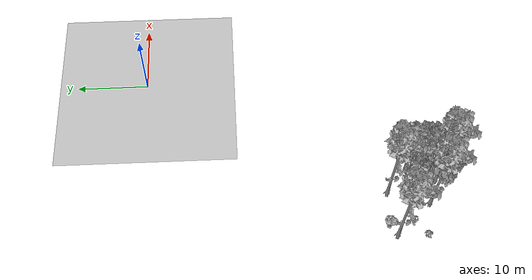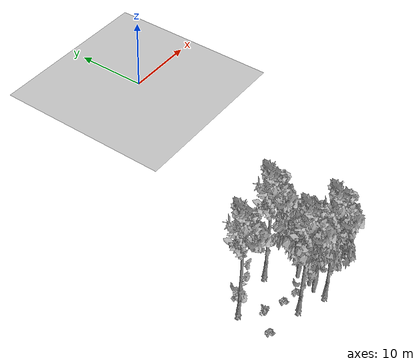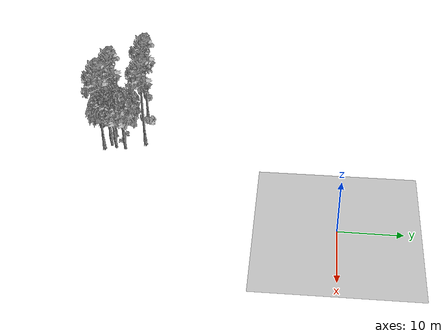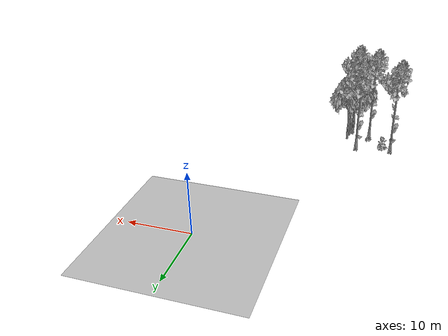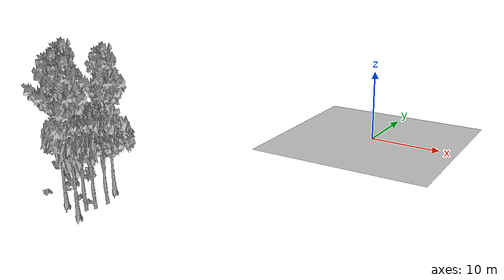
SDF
<sdf version="1.7">
 <world name="default">
  <model name="ground_plane">
   <static>1</static>
   <link name="link">
    <collision name="collision">
     <pose>-50 0 0 0 -0 0</pose>
     <geometry><plane><normal>0 0 1</normal><size>80 80</size></plane></geometry>
     <surface><contact><ode><min_depth>0.01</min_depth><max_vel>0</max_vel></ode></contact></surface>
    </collision>
    <visual name="grass">
     <cast_shadows>0</cast_shadows>
     <geometry>
      <mesh>
       <scale>0.46714285714285714 0.46714285714285714 0.1</scale>
       <uri>file://grass_plane/meshes/grass_plane.dae</uri>
      </mesh>
     </geometry>
    </visual>
   </link>
  </model>
  <model name="Tree 100">
   <static>1</static>
   <pose>-17.36912189933108 -37.86357063512025 0 1.57079 -0 0</pose>
   <link name="link">
    <collision name="collision">
     <geometry><mesh><scale>3.5 5 3.5</scale><uri>model://tree_2/meshes/tree_2.obj</uri></mesh></geometry>
    </collision>
    <visual name="visual">
     <geometry><mesh><scale>3.5 5 3.5</scale><uri>model://tree_2/meshes/tree_2.obj</uri></mesh></geometry>
    </visual>
   </link>
  </model>
  <model name="Tree 194">
   <static>1</static>
   <pose>-20.43119573056733 -37.86884461347148 0 1.57079 -0 0</pose>
   <link name="link">
    <collision name="collision">
     <geometry><mesh><scale>3.5 5 3.5</scale><uri>model://tree_9/meshes/tree_9.obj</uri></mesh></geometry>
    </collision>
    <visual name="visual">
     <geometry><mesh><scale>3.5 5 3.5</scale><uri>model://tree_9/meshes/tree_9.obj</uri></mesh></geometry>
    </visual>
   </link>
  </model>
  <model name="Tree 280">
   <static>1</static>
   <pose>-16.850812655670406 -37.02240419705477 0 1.57079 -0 0</pose>
   <link name="link">
    <collision name="collision">
     <geometry><mesh><scale>3.5 5 3.5</scale><uri>model://tree_2/meshes/tree_2.obj</uri></mesh></geometry>
    </collision>
    <visual name="visual">
     <geometry><mesh><scale>3.5 5 3.5</scale><uri>model://tree_2/meshes/tree_2.obj</uri></mesh></geometry>
    </visual>
   </link>
  </model>
  <model name="Tree 380">
   <static>1</static>
   <pose>-16.672058172170534 -35.45367031732988 0 1.57079 -0 0</pose>
   <link name="link">
    <collision name="collision">
     <geometry><mesh><scale>3.5 5 3.5</scale><uri>model://tree_2/meshes/tree_2.obj</uri></mesh></geometry>
    </collision>
    <visual name="visual">
     <geometry><mesh><scale>3.5 5 3.5</scale><uri>model://tree_2/meshes/tree_2.obj</uri></mesh></geometry>
    </visual>
   </link>
  </model>
  <model name="Tree 437">
   <static>1</static>
   <pose>-18.642048291720222 -32.430620519883526 0 1.57079 -0 0</pose>
   <link name="link">
    <collision name="collision">
     <geometry><mesh><scale>3.5 5 3.5</scale><uri>model://tree_9/meshes/tree_9.obj</uri></mesh></geometry>
    </collision>
    <visual name="visual">
     <geometry><mesh><scale>3.5 5 3.5</scale><uri>model://tree_9/meshes/tree_9.obj</uri></mesh></geometry>
    </visual>
   </link>
  </model>
  <model name="Tree 528">
   <static>1</static>
   <pose>-24.770427971746038 -32.979019142147806 0 1.57079 -0 0</pose>
   <link name="link">
    <collision name="collision">
     <geometry><mesh><scale>3.5 5 3.5</scale><uri>model://tree_9/meshes/tree_9.obj</uri></mesh></geometry>
    </collision>
    <visual name="visual">
     <geometry><mesh><scale>3.5 5 3.5</scale><uri>model://tree_9/meshes/tree_9.obj</uri></mesh></geometry>
    </visual>
   </link>
  </model>
  <model name="Tree 583">
   <static>1</static>
   <pose>-17.034142531322864 -39.15519311520383 0 1.57079 -0 0</pose>
   <link name="link">
    <collision name="collision">
     <geometry><mesh><scale>3.5 5 3.5</scale><uri>model://tree_9/meshes/tree_9.obj</uri></mesh></geometry>
    </collision>
    <visual name="visual">
     <geometry><mesh><scale>3.5 5 3.5</scale><uri>model://tree_9/meshes/tree_9.obj</uri></mesh></geometry>
    </visual>
   </link>
  </model>
  <model name="Bush 116">
   <static>1</static>
   <pose>-18.643657138651825 -36.48100166851578 0 1.57079 -0 0</pose>
   <link name="link">
    <collision name="collision">
     <geometry><mesh><scale>2 2 2</scale><uri>model://bush_2/meshes/bush_2.obj</uri></mesh></geometry>
     <surface><contact><collide_without_contact>false</collide_without_contact></contact></surface>
    </collision>
    <visual name="visual">
     <geometry><mesh><scale>2 2 2</scale><uri>model://bush_2/meshes/bush_2.obj</uri></mesh></geometry>
    </visual>
   </link>
  </model>
  <model name="Bush 172">
   <static>1</static>
   <pose>-24.877253760037146 -36.9854114858716 0 1.57079 -0 0</pose>
   <link name="link">
    <collision name="collision">
     <geometry><mesh><scale>2 2 2</scale><uri>model://bush_2/meshes/bush_2.obj</uri></mesh></geometry>
     <surface><contact><collide_without_contact>false</collide_without_contact></contact></surface>
    </collision>
    <visual name="visual">
     <geometry><mesh><scale>2 2 2</scale><uri>model://bush_2/meshes/bush_2.obj</uri></mesh></geometry>
    </visual>
   </link>
  </model>
  <model name="Bush 225">
   <static>1</static>
   <pose>-23.332251177073502 -32.27630719782245 0 1.57079 -0 0</pose>
   <link name="link">
    <collision name="collision">
     <geometry><mesh><scale>2 2 2</scale><uri>model://bush_1/meshes/bush_1.obj</uri></mesh></geometry>
     <surface><contact><collide_without_contact>false</collide_without_contact></contact></surface>
    </collision>
    <visual name="visual">
     <geometry><mesh><scale>2 2 2</scale><uri>model://bush_1/meshes/bush_1.obj</uri></mesh></geometry>
    </visual>
   </link>
  </model>
  <model name="Bush 463">
   <static>1</static>
   <pose>-20.476627444080105 -36.02668092567299 0 1.57079 -0 0</pose>
   <link name="link">
    <collision name="collision">
     <geometry><mesh><scale>2 2 2</scale><uri>model://bush_2/meshes/bush_2.obj</uri></mesh></geometry>
     <surface><contact><collide_without_contact>false</collide_without_contact></contact></surface>
    </collision>
    <visual name="visual">
     <geometry><mesh><scale>2 2 2</scale><uri>model://bush_2/meshes/bush_2.obj</uri></mesh></geometry>
    </visual>
   </link>
  </model>
  <model name="Bush 559">
   <static>1</static>
   <pose>-23.168340575066402 -35.226497316520955 0 1.57079 -0 0</pose>
   <link name="link">
    <collision name="collision">
     <geometry><mesh><scale>2 2 2</scale><uri>model://bush_4/meshes/bush_4.obj</uri></mesh></geometry>
     <surface><contact><collide_without_contact>false</collide_without_contact></contact></surface>
    </collision>
    <visual name="visual">
     <geometry><mesh><scale>2 2 2</scale><uri>model://bush_4/meshes/bush_4.obj</uri></mesh></geometry>
    </visual>
   </link>
  </model>
 </world>
</sdf>
